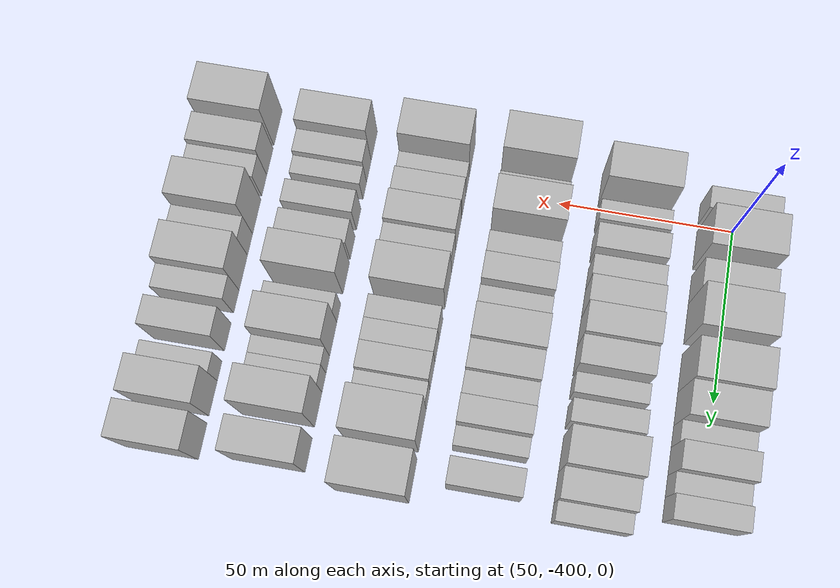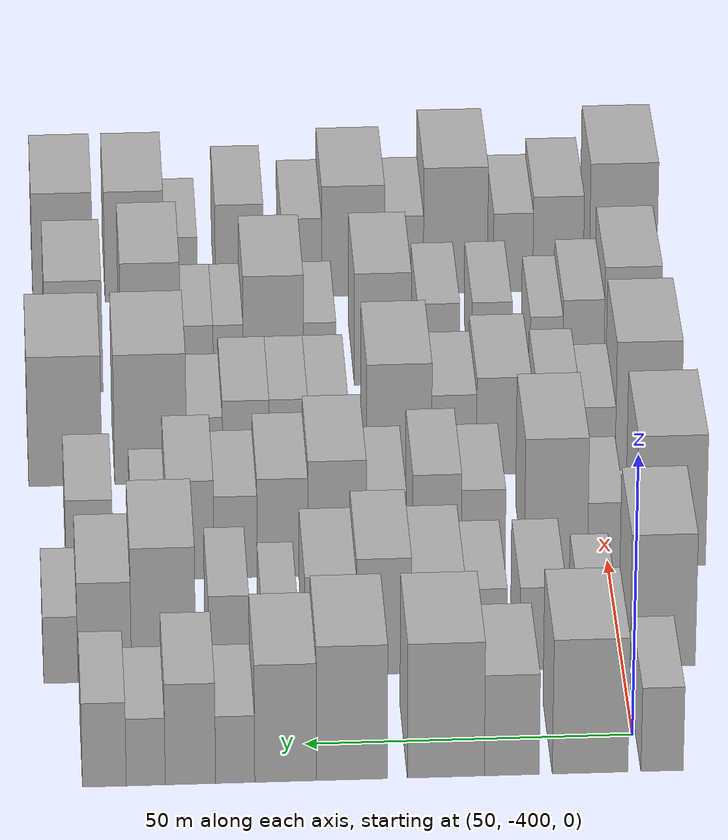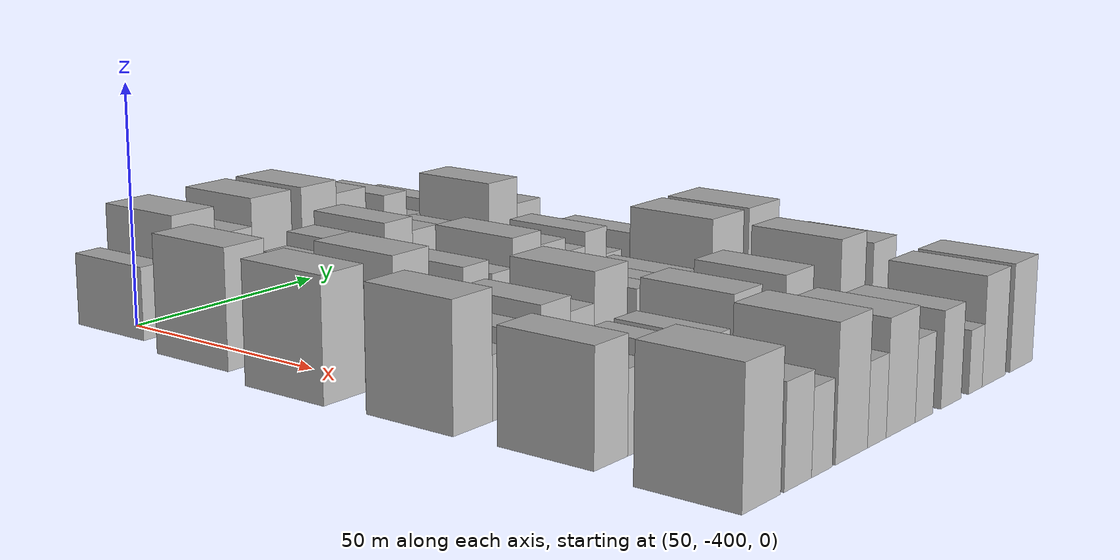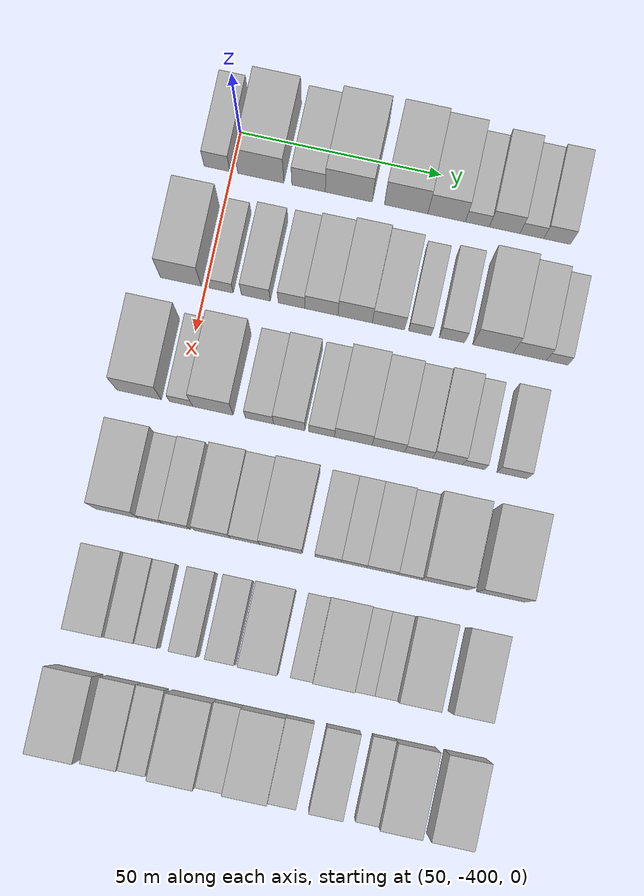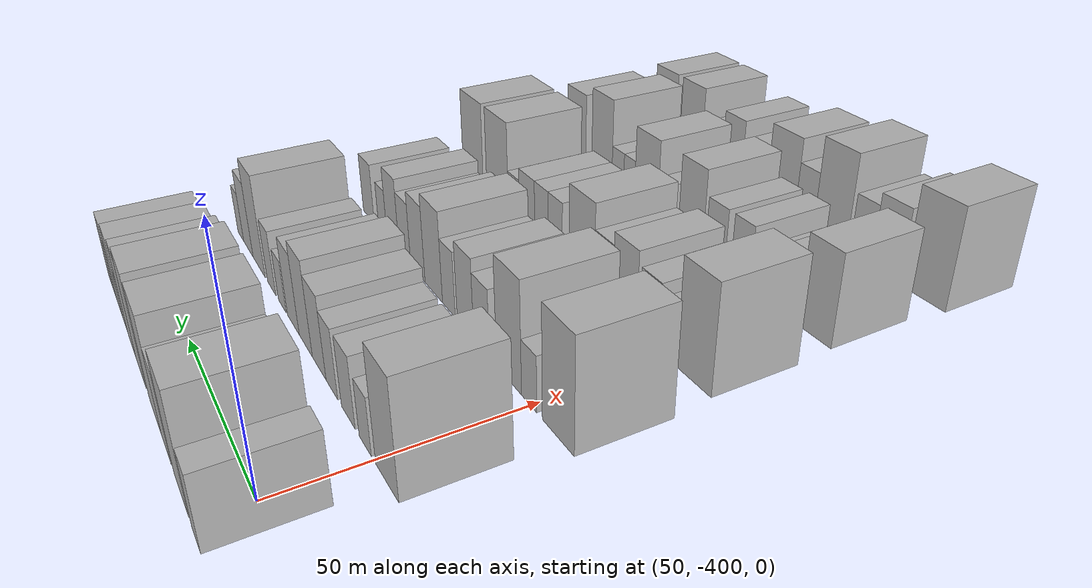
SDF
<sdf version="1.6">
 <world name="default">
  <model name="building_14">
   <static>1</static>
   <pose>50.0000 -403.6088 0 0.000000 0.000000 0.000000</pose>
   <link name="link">
    <pose>0 0 7.50 0 0 0</pose>
    <collision name="collision"><geometry><box><size>20.0000 6.3948 15.0000</size></box></geometry></collision>
    <visual name="visual">
     <cast_shadows>0</cast_shadows>
     <geometry><box><size>20.0000 6.3948 15.0000</size></box></geometry>
     <material>
      <script>
       <uri>model://HANNAS_wall/materials/scripts</uri>
       <uri>model://HANNAS_wall/materials/textures</uri>
       <name>vrc/HANNAS_wall</name>
      </script>
     </material>
    </visual>
   </link>
  </model>
  <model name="building_15">
   <static>1</static>
   <pose>50.0000 -392.6902 0 0.000000 0.000000 0.000000</pose>
   <link name="link">
    <pose>0 0 12.00 0 0 0</pose>
    <collision name="collision"><geometry><box><size>20.0000 11.4423 24.0000</size></box></geometry></collision>
    <visual name="visual">
     <cast_shadows>0</cast_shadows>
     <geometry><box><size>20.0000 11.4423 24.0000</size></box></geometry>
     <material>
      <script>
       <uri>model://HANNAS_wall/materials/scripts</uri>
       <uri>model://HANNAS_wall/materials/textures</uri>
       <name>vrc/HANNAS_wall</name>
      </script>
     </material>
    </visual>
   </link>
  </model>
  <model name="building_16">
   <static>1</static>
   <pose>50.0000 -380.8198 0 0.000000 0.000000 0.000000</pose>
   <link name="link">
    <pose>0 0 9.00 0 0 0</pose>
    <collision name="collision"><geometry><box><size>20.0000 8.2984 18.0000</size></box></geometry></collision>
    <visual name="visual">
     <cast_shadows>0</cast_shadows>
     <geometry><box><size>20.0000 8.2984 18.0000</size></box></geometry>
     <material>
      <script>
       <uri>model://HANNAS_wall/materials/scripts</uri>
       <uri>model://HANNAS_wall/materials/textures</uri>
       <name>vrc/HANNAS_wall</name>
      </script>
     </material>
    </visual>
   </link>
  </model>
  <model name="building_17">
   <static>1</static>
   <pose>50.0000 -370.8444 0 0.000000 0.000000 0.000000</pose>
   <link name="link">
    <pose>0 0 12.00 0 0 0</pose>
    <collision name="collision"><geometry><box><size>20.0000 11.6525 24.0000</size></box></geometry></collision>
    <visual name="visual">
     <cast_shadows>0</cast_shadows>
     <geometry><box><size>20.0000 11.6525 24.0000</size></box></geometry>
     <material>
      <script>
       <uri>model://HANNAS_wall/materials/scripts</uri>
       <uri>model://HANNAS_wall/materials/textures</uri>
       <name>vrc/HANNAS_wall</name>
      </script>
     </material>
    </visual>
   </link>
  </model>
  <model name="building_18">
   <static>1</static>
   <pose>50.0000 -356.6442 0 0.000000 0.000000 0.000000</pose>
   <link name="link">
    <pose>0 0 12.00 0 0 0</pose>
    <collision name="collision"><geometry><box><size>20.0000 10.7479 24.0000</size></box></geometry></collision>
    <visual name="visual">
     <cast_shadows>0</cast_shadows>
     <geometry><box><size>20.0000 10.7479 24.0000</size></box></geometry>
     <material>
      <script>
       <uri>model://HANNAS_wall/materials/scripts</uri>
       <uri>model://HANNAS_wall/materials/textures</uri>
       <name>vrc/HANNAS_wall</name>
      </script>
     </material>
    </visual>
   </link>
  </model>
  <model name="building_19">
   <static>1</static>
   <pose>50.0000 -346.6157 0 0.000000 0.000000 0.000000</pose>
   <link name="link">
    <pose>0 0 10.50 0 0 0</pose>
    <collision name="collision"><geometry><box><size>20.0000 9.3091 21.0000</size></box></geometry></collision>
    <visual name="visual">
     <cast_shadows>0</cast_shadows>
     <geometry><box><size>20.0000 9.3091 21.0000</size></box></geometry>
     <material>
      <script>
       <uri>model://HANNAS_wall/materials/scripts</uri>
       <uri>model://HANNAS_wall/materials/textures</uri>
       <name>vrc/HANNAS_wall</name>
      </script>
     </material>
    </visual>
   </link>
  </model>
  <model name="building_20">
   <static>1</static>
   <pose>50.0000 -338.9996 0 0.000000 0.000000 0.000000</pose>
   <link name="link">
    <pose>0 0 6.00 0 0 0</pose>
    <collision name="collision"><geometry><box><size>20.0000 5.9230 12.0000</size></box></geometry></collision>
    <visual name="visual">
     <cast_shadows>0</cast_shadows>
     <geometry><box><size>20.0000 5.9230 12.0000</size></box></geometry>
     <material>
      <script>
       <uri>model://HANNAS_wall/materials/scripts</uri>
       <uri>model://HANNAS_wall/materials/textures</uri>
       <name>vrc/HANNAS_wall</name>
      </script>
     </material>
    </visual>
   </link>
  </model>
  <model name="building_21">
   <static>1</static>
   <pose>50.0000 -332.2379 0 0.000000 0.000000 0.000000</pose>
   <link name="link">
    <pose>0 0 9.00 0 0 0</pose>
    <collision name="collision"><geometry><box><size>20.0000 7.6003 18.0000</size></box></geometry></collision>
    <visual name="visual">
     <cast_shadows>0</cast_shadows>
     <geometry><box><size>20.0000 7.6003 18.0000</size></box></geometry>
     <material>
      <script>
       <uri>model://HANNAS_wall/materials/scripts</uri>
       <uri>model://HANNAS_wall/materials/textures</uri>
       <name>vrc/HANNAS_wall</name>
      </script>
     </material>
    </visual>
   </link>
  </model>
  <model name="building_22">
   <static>1</static>
   <pose>50.0000 -325.4963 0 0.000000 0.000000 0.000000</pose>
   <link name="link">
    <pose>0 0 6.00 0 0 0</pose>
    <collision name="collision"><geometry><box><size>20.0000 5.8830 12.0000</size></box></geometry></collision>
    <visual name="visual">
     <cast_shadows>0</cast_shadows>
     <geometry><box><size>20.0000 5.8830 12.0000</size></box></geometry>
     <material>
      <script>
       <uri>model://HANNAS_wall/materials/scripts</uri>
       <uri>model://HANNAS_wall/materials/textures</uri>
       <name>vrc/HANNAS_wall</name>
      </script>
     </material>
    </visual>
   </link>
  </model>
  <model name="building_23">
   <static>1</static>
   <pose>50.0000 -319.2503 0 0.000000 0.000000 0.000000</pose>
   <link name="link">
    <pose>0 0 7.50 0 0 0</pose>
    <collision name="collision"><geometry><box><size>20.0000 6.6090 15.0000</size></box></geometry></collision>
    <visual name="visual">
     <cast_shadows>0</cast_shadows>
     <geometry><box><size>20.0000 6.6090 15.0000</size></box></geometry>
     <material>
      <script>
       <uri>model://HANNAS_wall/materials/scripts</uri>
       <uri>model://HANNAS_wall/materials/textures</uri>
       <name>vrc/HANNAS_wall</name>
      </script>
     </material>
    </visual>
   </link>
  </model>
  <model name="building_131">
   <static>1</static>
   <pose>79.0000 -406.0772 0 0.000000 0.000000 0.000000</pose>
   <link name="link">
    <pose>0 0 12.00 0 0 0</pose>
    <collision name="collision"><geometry><box><size>20.0000 10.1557 24.0000</size></box></geometry></collision>
    <visual name="visual">
     <cast_shadows>0</cast_shadows>
     <geometry><box><size>20.0000 10.1557 24.0000</size></box></geometry>
     <material>
      <script>
       <uri>model://HANNAS_wall/materials/scripts</uri>
       <uri>model://HANNAS_wall/materials/textures</uri>
       <name>vrc/HANNAS_wall</name>
      </script>
     </material>
    </visual>
   </link>
  </model>
  <model name="building_132">
   <static>1</static>
   <pose>79.0000 -396.0555 0 0.000000 0.000000 0.000000</pose>
   <link name="link">
    <pose>0 0 6.00 0 0 0</pose>
    <collision name="collision"><geometry><box><size>20.0000 5.8878 12.0000</size></box></geometry></collision>
    <visual name="visual">
     <cast_shadows>0</cast_shadows>
     <geometry><box><size>20.0000 5.8878 12.0000</size></box></geometry>
     <material>
      <script>
       <uri>model://HANNAS_wall/materials/scripts</uri>
       <uri>model://HANNAS_wall/materials/textures</uri>
       <name>vrc/HANNAS_wall</name>
      </script>
     </material>
    </visual>
   </link>
  </model>
  <model name="building_133">
   <static>1</static>
   <pose>79.0000 -387.5447 0 0.000000 0.000000 0.000000</pose>
   <link name="link">
    <pose>0 0 7.50 0 0 0</pose>
    <collision name="collision"><geometry><box><size>20.0000 7.1338 15.0000</size></box></geometry></collision>
    <visual name="visual">
     <cast_shadows>0</cast_shadows>
     <geometry><box><size>20.0000 7.1338 15.0000</size></box></geometry>
     <material>
      <script>
       <uri>model://HANNAS_wall/materials/scripts</uri>
       <uri>model://HANNAS_wall/materials/textures</uri>
       <name>vrc/HANNAS_wall</name>
      </script>
     </material>
    </visual>
   </link>
  </model>
  <model name="building_134">
   <static>1</static>
   <pose>79.0000 -378.6924 0 0.000000 0.000000 0.000000</pose>
   <link name="link">
    <pose>0 0 7.50 0 0 0</pose>
    <collision name="collision"><geometry><box><size>20.0000 6.5709 15.0000</size></box></geometry></collision>
    <visual name="visual">
     <cast_shadows>0</cast_shadows>
     <geometry><box><size>20.0000 6.5709 15.0000</size></box></geometry>
     <material>
      <script>
       <uri>model://HANNAS_wall/materials/scripts</uri>
       <uri>model://HANNAS_wall/materials/textures</uri>
       <name>vrc/HANNAS_wall</name>
      </script>
     </material>
    </visual>
   </link>
  </model>
  <model name="building_135">
   <static>1</static>
   <pose>79.0000 -371.3290 0 0.000000 0.000000 0.000000</pose>
   <link name="link">
    <pose>0 0 9.00 0 0 0</pose>
    <collision name="collision"><geometry><box><size>20.0000 8.1558 18.0000</size></box></geometry></collision>
    <visual name="visual">
     <cast_shadows>0</cast_shadows>
     <geometry><box><size>20.0000 8.1558 18.0000</size></box></geometry>
     <material>
      <script>
       <uri>model://HANNAS_wall/materials/scripts</uri>
       <uri>model://HANNAS_wall/materials/textures</uri>
       <name>vrc/HANNAS_wall</name>
      </script>
     </material>
    </visual>
   </link>
  </model>
  <model name="building_136">
   <static>1</static>
   <pose>79.0000 -363.0240 0 0.000000 0.000000 0.000000</pose>
   <link name="link">
    <pose>0 0 10.50 0 0 0</pose>
    <collision name="collision"><geometry><box><size>20.0000 8.4543 21.0000</size></box></geometry></collision>
    <visual name="visual">
     <cast_shadows>0</cast_shadows>
     <geometry><box><size>20.0000 8.4543 21.0000</size></box></geometry>
     <material>
      <script>
       <uri>model://HANNAS_wall/materials/scripts</uri>
       <uri>model://HANNAS_wall/materials/textures</uri>
       <name>vrc/HANNAS_wall</name>
      </script>
     </material>
    </visual>
   </link>
  </model>
  <model name="building_137">
   <static>1</static>
   <pose>79.0000 -354.8256 0 0.000000 0.000000 0.000000</pose>
   <link name="link">
    <pose>0 0 9.00 0 0 0</pose>
    <collision name="collision"><geometry><box><size>20.0000 7.9425 18.0000</size></box></geometry></collision>
    <visual name="visual">
     <cast_shadows>0</cast_shadows>
     <geometry><box><size>20.0000 7.9425 18.0000</size></box></geometry>
     <material>
      <script>
       <uri>model://HANNAS_wall/materials/scripts</uri>
       <uri>model://HANNAS_wall/materials/textures</uri>
       <name>vrc/HANNAS_wall</name>
      </script>
     </material>
    </visual>
   </link>
  </model>
  <model name="building_138">
   <static>1</static>
   <pose>79.0000 -347.0695 0 0.000000 0.000000 0.000000</pose>
   <link name="link">
    <pose>0 0 6.00 0 0 0</pose>
    <collision name="collision"><geometry><box><size>20.0000 5.5696 12.0000</size></box></geometry></collision>
    <visual name="visual">
     <cast_shadows>0</cast_shadows>
     <geometry><box><size>20.0000 5.5696 12.0000</size></box></geometry>
     <material>
      <script>
       <uri>model://HANNAS_wall/materials/scripts</uri>
       <uri>model://HANNAS_wall/materials/textures</uri>
       <name>vrc/HANNAS_wall</name>
      </script>
     </material>
    </visual>
   </link>
  </model>
  <model name="building_139">
   <static>1</static>
   <pose>79.0000 -339.1572 0 0.000000 0.000000 0.000000</pose>
   <link name="link">
    <pose>0 0 7.50 0 0 0</pose>
    <collision name="collision"><geometry><box><size>20.0000 6.2550 15.0000</size></box></geometry></collision>
    <visual name="visual">
     <cast_shadows>0</cast_shadows>
     <geometry><box><size>20.0000 6.2550 15.0000</size></box></geometry>
     <material>
      <script>
       <uri>model://HANNAS_wall/materials/scripts</uri>
       <uri>model://HANNAS_wall/materials/textures</uri>
       <name>vrc/HANNAS_wall</name>
      </script>
     </material>
    </visual>
   </link>
  </model>
  <model name="building_140">
   <static>1</static>
   <pose>79.0000 -329.0818 0 0.000000 0.000000 0.000000</pose>
   <link name="link">
    <pose>0 0 12.00 0 0 0</pose>
    <collision name="collision"><geometry><box><size>20.0000 9.8959 24.0000</size></box></geometry></collision>
    <visual name="visual">
     <cast_shadows>0</cast_shadows>
     <geometry><box><size>20.0000 9.8959 24.0000</size></box></geometry>
     <material>
      <script>
       <uri>model://HANNAS_wall/materials/scripts</uri>
       <uri>model://HANNAS_wall/materials/textures</uri>
       <name>vrc/HANNAS_wall</name>
      </script>
     </material>
    </visual>
   </link>
  </model>
  <model name="building_141">
   <static>1</static>
   <pose>79.0000 -320.0129 0 0.000000 0.000000 0.000000</pose>
   <link name="link">
    <pose>0 0 9.00 0 0 0</pose>
    <collision name="collision"><geometry><box><size>20.0000 8.2419 18.0000</size></box></geometry></collision>
    <visual name="visual">
     <cast_shadows>0</cast_shadows>
     <geometry><box><size>20.0000 8.2419 18.0000</size></box></geometry>
     <material>
      <script>
       <uri>model://HANNAS_wall/materials/scripts</uri>
       <uri>model://HANNAS_wall/materials/textures</uri>
       <name>vrc/HANNAS_wall</name>
      </script>
     </material>
    </visual>
   </link>
  </model>
  <model name="building_142">
   <static>1</static>
   <pose>79.0000 -313.2557 0 0.000000 0.000000 0.000000</pose>
   <link name="link">
    <pose>0 0 6.00 0 0 0</pose>
    <collision name="collision"><geometry><box><size>20.0000 5.2726 12.0000</size></box></geometry></collision>
    <visual name="visual">
     <cast_shadows>0</cast_shadows>
     <geometry><box><size>20.0000 5.2726 12.0000</size></box></geometry>
     <material>
      <script>
       <uri>model://HANNAS_wall/materials/scripts</uri>
       <uri>model://HANNAS_wall/materials/textures</uri>
       <name>vrc/HANNAS_wall</name>
      </script>
     </material>
    </visual>
   </link>
  </model>
  <model name="building_247">
   <static>1</static>
   <pose>108.0000 -409.8391 0 0.000000 0.000000 0.000000</pose>
   <link name="link">
    <pose>0 0 12.00 0 0 0</pose>
    <collision name="collision"><geometry><box><size>20.0000 10.9252 24.0000</size></box></geometry></collision>
    <visual name="visual">
     <cast_shadows>0</cast_shadows>
     <geometry><box><size>20.0000 10.9252 24.0000</size></box></geometry>
     <material>
      <script>
       <uri>model://HANNAS_wall/materials/scripts</uri>
       <uri>model://HANNAS_wall/materials/textures</uri>
       <name>vrc/HANNAS_wall</name>
      </script>
     </material>
    </visual>
   </link>
  </model>
  <model name="building_248">
   <static>1</static>
   <pose>108.0000 -399.5197 0 0.000000 0.000000 0.000000</pose>
   <link name="link">
    <pose>0 0 6.00 0 0 0</pose>
    <collision name="collision"><geometry><box><size>20.0000 5.7135 12.0000</size></box></geometry></collision>
    <visual name="visual">
     <cast_shadows>0</cast_shadows>
     <geometry><box><size>20.0000 5.7135 12.0000</size></box></geometry>
     <material>
      <script>
       <uri>model://HANNAS_wall/materials/scripts</uri>
       <uri>model://HANNAS_wall/materials/textures</uri>
       <name>vrc/HANNAS_wall</name>
      </script>
     </material>
    </visual>
   </link>
  </model>
  <model name="building_249">
   <static>1</static>
   <pose>108.0000 -391.6768 0 0.000000 0.000000 0.000000</pose>
   <link name="link">
    <pose>0 0 12.00 0 0 0</pose>
    <collision name="collision"><geometry><box><size>20.0000 9.9724 24.0000</size></box></geometry></collision>
    <visual name="visual">
     <cast_shadows>0</cast_shadows>
     <geometry><box><size>20.0000 9.9724 24.0000</size></box></geometry>
     <material>
      <script>
       <uri>model://HANNAS_wall/materials/scripts</uri>
       <uri>model://HANNAS_wall/materials/textures</uri>
       <name>vrc/HANNAS_wall</name>
      </script>
     </material>
    </visual>
   </link>
  </model>
  <model name="building_250">
   <static>1</static>
   <pose>108.0000 -380.2338 0 0.000000 0.000000 0.000000</pose>
   <link name="link">
    <pose>0 0 7.50 0 0 0</pose>
    <collision name="collision"><geometry><box><size>20.0000 6.9134 15.0000</size></box></geometry></collision>
    <visual name="visual">
     <cast_shadows>0</cast_shadows>
     <geometry><box><size>20.0000 6.9134 15.0000</size></box></geometry>
     <material>
      <script>
       <uri>model://HANNAS_wall/materials/scripts</uri>
       <uri>model://HANNAS_wall/materials/textures</uri>
       <name>vrc/HANNAS_wall</name>
      </script>
     </material>
    </visual>
   </link>
  </model>
  <model name="building_251">
   <static>1</static>
   <pose>108.0000 -372.9438 0 0.000000 0.000000 0.000000</pose>
   <link name="link">
    <pose>0 0 9.00 0 0 0</pose>
    <collision name="collision"><geometry><box><size>20.0000 7.6667 18.0000</size></box></geometry></collision>
    <visual name="visual">
     <cast_shadows>0</cast_shadows>
     <geometry><box><size>20.0000 7.6667 18.0000</size></box></geometry>
     <material>
      <script>
       <uri>model://HANNAS_wall/materials/scripts</uri>
       <uri>model://HANNAS_wall/materials/textures</uri>
       <name>vrc/HANNAS_wall</name>
      </script>
     </material>
    </visual>
   </link>
  </model>
  <model name="building_252">
   <static>1</static>
   <pose>108.0000 -364.9559 0 0.000000 0.000000 0.000000</pose>
   <link name="link">
    <pose>0 0 7.50 0 0 0</pose>
    <collision name="collision"><geometry><box><size>20.0000 6.3091 15.0000</size></box></geometry></collision>
    <visual name="visual">
     <cast_shadows>0</cast_shadows>
     <geometry><box><size>20.0000 6.3091 15.0000</size></box></geometry>
     <material>
      <script>
       <uri>model://HANNAS_wall/materials/scripts</uri>
       <uri>model://HANNAS_wall/materials/textures</uri>
       <name>vrc/HANNAS_wall</name>
      </script>
     </material>
    </visual>
   </link>
  </model>
  <model name="building_253">
   <static>1</static>
   <pose>108.0000 -357.2243 0 0.000000 0.000000 0.000000</pose>
   <link name="link">
    <pose>0 0 10.50 0 0 0</pose>
    <collision name="collision"><geometry><box><size>20.0000 9.1541 21.0000</size></box></geometry></collision>
    <visual name="visual">
     <cast_shadows>0</cast_shadows>
     <geometry><box><size>20.0000 9.1541 21.0000</size></box></geometry>
     <material>
      <script>
       <uri>model://HANNAS_wall/materials/scripts</uri>
       <uri>model://HANNAS_wall/materials/textures</uri>
       <name>vrc/HANNAS_wall</name>
      </script>
     </material>
    </visual>
   </link>
  </model>
  <model name="building_254">
   <static>1</static>
   <pose>108.0000 -348.6583 0 0.000000 0.000000 0.000000</pose>
   <link name="link">
    <pose>0 0 9.00 0 0 0</pose>
    <collision name="collision"><geometry><box><size>20.0000 7.9779 18.0000</size></box></geometry></collision>
    <visual name="visual">
     <cast_shadows>0</cast_shadows>
     <geometry><box><size>20.0000 7.9779 18.0000</size></box></geometry>
     <material>
      <script>
       <uri>model://HANNAS_wall/materials/scripts</uri>
       <uri>model://HANNAS_wall/materials/textures</uri>
       <name>vrc/HANNAS_wall</name>
      </script>
     </material>
    </visual>
   </link>
  </model>
  <model name="building_255">
   <static>1</static>
   <pose>108.0000 -341.2759 0 0.000000 0.000000 0.000000</pose>
   <link name="link">
    <pose>0 0 7.50 0 0 0</pose>
    <collision name="collision"><geometry><box><size>20.0000 6.7870 15.0000</size></box></geometry></collision>
    <visual name="visual">
     <cast_shadows>0</cast_shadows>
     <geometry><box><size>20.0000 6.7870 15.0000</size></box></geometry>
     <material>
      <script>
       <uri>model://HANNAS_wall/materials/scripts</uri>
       <uri>model://HANNAS_wall/materials/textures</uri>
       <name>vrc/HANNAS_wall</name>
      </script>
     </material>
    </visual>
   </link>
  </model>
  <model name="building_256">
   <static>1</static>
   <pose>108.0000 -334.1469 0 0.000000 0.000000 0.000000</pose>
   <link name="link">
    <pose>0 0 9.00 0 0 0</pose>
    <collision name="collision"><geometry><box><size>20.0000 7.4709 18.0000</size></box></geometry></collision>
    <visual name="visual">
     <cast_shadows>0</cast_shadows>
     <geometry><box><size>20.0000 7.4709 18.0000</size></box></geometry>
     <material>
      <script>
       <uri>model://HANNAS_wall/materials/scripts</uri>
       <uri>model://HANNAS_wall/materials/textures</uri>
       <name>vrc/HANNAS_wall</name>
      </script>
     </material>
    </visual>
   </link>
  </model>
  <model name="building_257">
   <static>1</static>
   <pose>108.0000 -327.7207 0 0.000000 0.000000 0.000000</pose>
   <link name="link">
    <pose>0 0 6.00 0 0 0</pose>
    <collision name="collision"><geometry><box><size>20.0000 5.3815 12.0000</size></box></geometry></collision>
    <visual name="visual">
     <cast_shadows>0</cast_shadows>
     <geometry><box><size>20.0000 5.3815 12.0000</size></box></geometry>
     <material>
      <script>
       <uri>model://HANNAS_wall/materials/scripts</uri>
       <uri>model://HANNAS_wall/materials/textures</uri>
       <name>vrc/HANNAS_wall</name>
      </script>
     </material>
    </visual>
   </link>
  </model>
  <model name="building_258">
   <static>1</static>
   <pose>108.0000 -318.3480 0 0.000000 0.000000 0.000000</pose>
   <link name="link">
    <pose>0 0 7.50 0 0 0</pose>
    <collision name="collision"><geometry><box><size>20.0000 7.3638 15.0000</size></box></geometry></collision>
    <visual name="visual">
     <cast_shadows>0</cast_shadows>
     <geometry><box><size>20.0000 7.3638 15.0000</size></box></geometry>
     <material>
      <script>
       <uri>model://HANNAS_wall/materials/scripts</uri>
       <uri>model://HANNAS_wall/materials/textures</uri>
       <name>vrc/HANNAS_wall</name>
      </script>
     </material>
    </visual>
   </link>
  </model>
  <model name="building_365">
   <static>1</static>
   <pose>137.0000 -408.5742 0 0.000000 0.000000 0.000000</pose>
   <link name="link">
    <pose>0 0 12.00 0 0 0</pose>
    <collision name="collision"><geometry><box><size>20.0000 10.5537 24.0000</size></box></geometry></collision>
    <visual name="visual">
     <cast_shadows>0</cast_shadows>
     <geometry><box><size>20.0000 10.5537 24.0000</size></box></geometry>
     <material>
      <script>
       <uri>model://HANNAS_wall/materials/scripts</uri>
       <uri>model://HANNAS_wall/materials/textures</uri>
       <name>vrc/HANNAS_wall</name>
      </script>
     </material>
    </visual>
   </link>
  </model>
  <model name="building_366">
   <static>1</static>
   <pose>137.0000 -400.4057 0 0.000000 0.000000 0.000000</pose>
   <link name="link">
    <pose>0 0 6.00 0 0 0</pose>
    <collision name="collision"><geometry><box><size>20.0000 5.7832 12.0000</size></box></geometry></collision>
    <visual name="visual">
     <cast_shadows>0</cast_shadows>
     <geometry><box><size>20.0000 5.7832 12.0000</size></box></geometry>
     <material>
      <script>
       <uri>model://HANNAS_wall/materials/scripts</uri>
       <uri>model://HANNAS_wall/materials/textures</uri>
       <name>vrc/HANNAS_wall</name>
      </script>
     </material>
    </visual>
   </link>
  </model>
  <model name="building_367">
   <static>1</static>
   <pose>137.0000 -394.1179 0 0.000000 0.000000 0.000000</pose>
   <link name="link">
    <pose>0 0 7.50 0 0 0</pose>
    <collision name="collision"><geometry><box><size>20.0000 6.7924 15.0000</size></box></geometry></collision>
    <visual name="visual">
     <cast_shadows>0</cast_shadows>
     <geometry><box><size>20.0000 6.7924 15.0000</size></box></geometry>
     <material>
      <script>
       <uri>model://HANNAS_wall/materials/scripts</uri>
       <uri>model://HANNAS_wall/materials/textures</uri>
       <name>vrc/HANNAS_wall</name>
      </script>
     </material>
    </visual>
   </link>
  </model>
  <model name="building_368">
   <static>1</static>
   <pose>137.0000 -385.3560 0 0.000000 0.000000 0.000000</pose>
   <link name="link">
    <pose>0 0 9.00 0 0 0</pose>
    <collision name="collision"><geometry><box><size>20.0000 8.7315 18.0000</size></box></geometry></collision>
    <visual name="visual">
     <cast_shadows>0</cast_shadows>
     <geometry><box><size>20.0000 8.7315 18.0000</size></box></geometry>
     <material>
      <script>
       <uri>model://HANNAS_wall/materials/scripts</uri>
       <uri>model://HANNAS_wall/materials/textures</uri>
       <name>vrc/HANNAS_wall</name>
      </script>
     </material>
    </visual>
   </link>
  </model>
  <model name="building_369">
   <static>1</static>
   <pose>137.0000 -377.3966 0 0.000000 0.000000 0.000000</pose>
   <link name="link">
    <pose>0 0 7.50 0 0 0</pose>
    <collision name="collision"><geometry><box><size>20.0000 7.1872 15.0000</size></box></geometry></collision>
    <visual name="visual">
     <cast_shadows>0</cast_shadows>
     <geometry><box><size>20.0000 7.1872 15.0000</size></box></geometry>
     <material>
      <script>
       <uri>model://HANNAS_wall/materials/scripts</uri>
       <uri>model://HANNAS_wall/materials/textures</uri>
       <name>vrc/HANNAS_wall</name>
      </script>
     </material>
    </visual>
   </link>
  </model>
  <model name="building_370">
   <static>1</static>
   <pose>137.0000 -368.5956 0 0.000000 0.000000 0.000000</pose>
   <link name="link">
    <pose>0 0 10.50 0 0 0</pose>
    <collision name="collision"><geometry><box><size>20.0000 10.4150 21.0000</size></box></geometry></collision>
    <visual name="visual">
     <cast_shadows>0</cast_shadows>
     <geometry><box><size>20.0000 10.4150 21.0000</size></box></geometry>
     <material>
      <script>
       <uri>model://HANNAS_wall/materials/scripts</uri>
       <uri>model://HANNAS_wall/materials/textures</uri>
       <name>vrc/HANNAS_wall</name>
      </script>
     </material>
    </visual>
   </link>
  </model>
  <model name="building_371">
   <static>1</static>
   <pose>137.0000 -357.1713 0 0.000000 0.000000 0.000000</pose>
   <link name="link">
    <pose>0 0 7.50 0 0 0</pose>
    <collision name="collision"><geometry><box><size>20.0000 6.4335 15.0000</size></box></geometry></collision>
    <visual name="visual">
     <cast_shadows>0</cast_shadows>
     <geometry><box><size>20.0000 6.4335 15.0000</size></box></geometry>
     <material>
      <script>
       <uri>model://HANNAS_wall/materials/scripts</uri>
       <uri>model://HANNAS_wall/materials/textures</uri>
       <name>vrc/HANNAS_wall</name>
      </script>
     </material>
    </visual>
   </link>
  </model>
  <model name="building_372">
   <static>1</static>
   <pose>137.0000 -350.8728 0 0.000000 0.000000 0.000000</pose>
   <link name="link">
    <pose>0 0 7.50 0 0 0</pose>
    <collision name="collision"><geometry><box><size>20.0000 6.1636 15.0000</size></box></geometry></collision>
    <visual name="visual">
     <cast_shadows>0</cast_shadows>
     <geometry><box><size>20.0000 6.1636 15.0000</size></box></geometry>
     <material>
      <script>
       <uri>model://HANNAS_wall/materials/scripts</uri>
       <uri>model://HANNAS_wall/materials/textures</uri>
       <name>vrc/HANNAS_wall</name>
      </script>
     </material>
    </visual>
   </link>
  </model>
  <model name="building_373">
   <static>1</static>
   <pose>137.0000 -344.0412 0 0.000000 0.000000 0.000000</pose>
   <link name="link">
    <pose>0 0 7.50 0 0 0</pose>
    <collision name="collision"><geometry><box><size>20.0000 7.4994 15.0000</size></box></geometry></collision>
    <visual name="visual">
     <cast_shadows>0</cast_shadows>
     <geometry><box><size>20.0000 7.4994 15.0000</size></box></geometry>
     <material>
      <script>
       <uri>model://HANNAS_wall/materials/scripts</uri>
       <uri>model://HANNAS_wall/materials/textures</uri>
       <name>vrc/HANNAS_wall</name>
      </script>
     </material>
    </visual>
   </link>
  </model>
  <model name="building_374">
   <static>1</static>
   <pose>137.0000 -337.4104 0 0.000000 0.000000 0.000000</pose>
   <link name="link">
    <pose>0 0 6.00 0 0 0</pose>
    <collision name="collision"><geometry><box><size>20.0000 5.7622 12.0000</size></box></geometry></collision>
    <visual name="visual">
     <cast_shadows>0</cast_shadows>
     <geometry><box><size>20.0000 5.7622 12.0000</size></box></geometry>
     <material>
      <script>
       <uri>model://HANNAS_wall/materials/scripts</uri>
       <uri>model://HANNAS_wall/materials/textures</uri>
       <name>vrc/HANNAS_wall</name>
      </script>
     </material>
    </visual>
   </link>
  </model>
  <model name="building_375">
   <static>1</static>
   <pose>137.0000 -328.7541 0 0.000000 0.000000 0.000000</pose>
   <link name="link">
    <pose>0 0 12.00 0 0 0</pose>
    <collision name="collision"><geometry><box><size>20.0000 11.5505 24.0000</size></box></geometry></collision>
    <visual name="visual">
     <cast_shadows>0</cast_shadows>
     <geometry><box><size>20.0000 11.5505 24.0000</size></box></geometry>
     <material>
      <script>
       <uri>model://HANNAS_wall/materials/scripts</uri>
       <uri>model://HANNAS_wall/materials/textures</uri>
       <name>vrc/HANNAS_wall</name>
      </script>
     </material>
    </visual>
   </link>
  </model>
  <model name="building_376">
   <static>1</static>
   <pose>137.0000 -315.0941 0 0.000000 0.000000 0.000000</pose>
   <link name="link">
    <pose>0 0 12.00 0 0 0</pose>
    <collision name="collision"><geometry><box><size>20.0000 11.7695 24.0000</size></box></geometry></collision>
    <visual name="visual">
     <cast_shadows>0</cast_shadows>
     <geometry><box><size>20.0000 11.7695 24.0000</size></box></geometry>
     <material>
      <script>
       <uri>model://HANNAS_wall/materials/scripts</uri>
       <uri>model://HANNAS_wall/materials/textures</uri>
       <name>vrc/HANNAS_wall</name>
      </script>
     </material>
    </visual>
   </link>
  </model>
  <model name="building_474">
   <static>1</static>
   <pose>166.0000 -408.3612 0 0.000000 0.000000 0.000000</pose>
   <link name="link">
    <pose>0 0 10.50 0 0 0</pose>
    <collision name="collision"><geometry><box><size>20.0000 9.3088 21.0000</size></box></geometry></collision>
    <visual name="visual">
     <cast_shadows>0</cast_shadows>
     <geometry><box><size>20.0000 9.3088 21.0000</size></box></geometry>
     <material>
      <script>
       <uri>model://HANNAS_wall/materials/scripts</uri>
       <uri>model://HANNAS_wall/materials/textures</uri>
       <name>vrc/HANNAS_wall</name>
      </script>
     </material>
    </visual>
   </link>
  </model>
  <model name="building_475">
   <static>1</static>
   <pose>166.0000 -400.3292 0 0.000000 0.000000 0.000000</pose>
   <link name="link">
    <pose>0 0 7.50 0 0 0</pose>
    <collision name="collision"><geometry><box><size>20.0000 6.7550 15.0000</size></box></geometry></collision>
    <visual name="visual">
     <cast_shadows>0</cast_shadows>
     <geometry><box><size>20.0000 6.7550 15.0000</size></box></geometry>
     <material>
      <script>
       <uri>model://HANNAS_wall/materials/scripts</uri>
       <uri>model://HANNAS_wall/materials/textures</uri>
       <name>vrc/HANNAS_wall</name>
      </script>
     </material>
    </visual>
   </link>
  </model>
  <model name="building_476">
   <static>1</static>
   <pose>166.0000 -394.2780 0 0.000000 0.000000 0.000000</pose>
   <link name="link">
    <pose>0 0 6.00 0 0 0</pose>
    <collision name="collision"><geometry><box><size>20.0000 5.3475 12.0000</size></box></geometry></collision>
    <visual name="visual">
     <cast_shadows>0</cast_shadows>
     <geometry><box><size>20.0000 5.3475 12.0000</size></box></geometry>
     <material>
      <script>
       <uri>model://HANNAS_wall/materials/scripts</uri>
       <uri>model://HANNAS_wall/materials/textures</uri>
       <name>vrc/HANNAS_wall</name>
      </script>
     </material>
    </visual>
   </link>
  </model>
  <model name="building_477">
   <static>1</static>
   <pose>166.0000 -385.3408 0 0.000000 0.000000 0.000000</pose>
   <link name="link">
    <pose>0 0 7.50 0 0 0</pose>
    <collision name="collision"><geometry><box><size>20.0000 6.5269 15.0000</size></box></geometry></collision>
    <visual name="visual">
     <cast_shadows>0</cast_shadows>
     <geometry><box><size>20.0000 6.5269 15.0000</size></box></geometry>
     <material>
      <script>
       <uri>model://HANNAS_wall/materials/scripts</uri>
       <uri>model://HANNAS_wall/materials/textures</uri>
       <name>vrc/HANNAS_wall</name>
      </script>
     </material>
    </visual>
   </link>
  </model>
  <model name="building_478">
   <static>1</static>
   <pose>166.0000 -376.6183 0 0.000000 0.000000 0.000000</pose>
   <link name="link">
    <pose>0 0 7.50 0 0 0</pose>
    <collision name="collision"><geometry><box><size>20.0000 6.9181 15.0000</size></box></geometry></collision>
    <visual name="visual">
     <cast_shadows>0</cast_shadows>
     <geometry><box><size>20.0000 6.9181 15.0000</size></box></geometry>
     <material>
      <script>
       <uri>model://HANNAS_wall/materials/scripts</uri>
       <uri>model://HANNAS_wall/materials/textures</uri>
       <name>vrc/HANNAS_wall</name>
      </script>
     </material>
    </visual>
   </link>
  </model>
  <model name="building_479">
   <static>1</static>
   <pose>166.0000 -367.5160 0 0.000000 0.000000 0.000000</pose>
   <link name="link">
    <pose>0 0 10.50 0 0 0</pose>
    <collision name="collision"><geometry><box><size>20.0000 9.2864 21.0000</size></box></geometry></collision>
    <visual name="visual">
     <cast_shadows>0</cast_shadows>
     <geometry><box><size>20.0000 9.2864 21.0000</size></box></geometry>
     <material>
      <script>
       <uri>model://HANNAS_wall/materials/scripts</uri>
       <uri>model://HANNAS_wall/materials/textures</uri>
       <name>vrc/HANNAS_wall</name>
      </script>
     </material>
    </visual>
   </link>
  </model>
  <model name="building_480">
   <static>1</static>
   <pose>166.0000 -357.2113 0 0.000000 0.000000 0.000000</pose>
   <link name="link">
    <pose>0 0 6.00 0 0 0</pose>
    <collision name="collision"><geometry><box><size>20.0000 5.3231 12.0000</size></box></geometry></collision>
    <visual name="visual">
     <cast_shadows>0</cast_shadows>
     <geometry><box><size>20.0000 5.3231 12.0000</size></box></geometry>
     <material>
      <script>
       <uri>model://HANNAS_wall/materials/scripts</uri>
       <uri>model://HANNAS_wall/materials/textures</uri>
       <name>vrc/HANNAS_wall</name>
      </script>
     </material>
    </visual>
   </link>
  </model>
  <model name="building_481">
   <static>1</static>
   <pose>166.0000 -349.6382 0 0.000000 0.000000 0.000000</pose>
   <link name="link">
    <pose>0 0 10.50 0 0 0</pose>
    <collision name="collision"><geometry><box><size>20.0000 9.8230 21.0000</size></box></geometry></collision>
    <visual name="visual">
     <cast_shadows>0</cast_shadows>
     <geometry><box><size>20.0000 9.8230 21.0000</size></box></geometry>
     <material>
      <script>
       <uri>model://HANNAS_wall/materials/scripts</uri>
       <uri>model://HANNAS_wall/materials/textures</uri>
       <name>vrc/HANNAS_wall</name>
      </script>
     </material>
    </visual>
   </link>
  </model>
  <model name="building_482">
   <static>1</static>
   <pose>166.0000 -342.2788 0 0.000000 0.000000 0.000000</pose>
   <link name="link">
    <pose>0 0 6.00 0 0 0</pose>
    <collision name="collision"><geometry><box><size>20.0000 4.8957 12.0000</size></box></geometry></collision>
    <visual name="visual">
     <cast_shadows>0</cast_shadows>
     <geometry><box><size>20.0000 4.8957 12.0000</size></box></geometry>
     <material>
      <script>
       <uri>model://HANNAS_wall/materials/scripts</uri>
       <uri>model://HANNAS_wall/materials/textures</uri>
       <name>vrc/HANNAS_wall</name>
      </script>
     </material>
    </visual>
   </link>
  </model>
  <model name="building_483">
   <static>1</static>
   <pose>166.0000 -337.1550 0 0.000000 0.000000 0.000000</pose>
   <link name="link">
    <pose>0 0 6.00 0 0 0</pose>
    <collision name="collision"><geometry><box><size>20.0000 5.3519 12.0000</size></box></geometry></collision>
    <visual name="visual">
     <cast_shadows>0</cast_shadows>
     <geometry><box><size>20.0000 5.3519 12.0000</size></box></geometry>
     <material>
      <script>
       <uri>model://HANNAS_wall/materials/scripts</uri>
       <uri>model://HANNAS_wall/materials/textures</uri>
       <name>vrc/HANNAS_wall</name>
      </script>
     </material>
    </visual>
   </link>
  </model>
  <model name="building_484">
   <static>1</static>
   <pose>166.0000 -329.6318 0 0.000000 0.000000 0.000000</pose>
   <link name="link">
    <pose>0 0 12.00 0 0 0</pose>
    <collision name="collision"><geometry><box><size>20.0000 9.6945 24.0000</size></box></geometry></collision>
    <visual name="visual">
     <cast_shadows>0</cast_shadows>
     <geometry><box><size>20.0000 9.6945 24.0000</size></box></geometry>
     <material>
      <script>
       <uri>model://HANNAS_wall/materials/scripts</uri>
       <uri>model://HANNAS_wall/materials/textures</uri>
       <name>vrc/HANNAS_wall</name>
      </script>
     </material>
    </visual>
   </link>
  </model>
  <model name="building_485">
   <static>1</static>
   <pose>166.0000 -317.1141 0 0.000000 0.000000 0.000000</pose>
   <link name="link">
    <pose>0 0 10.50 0 0 0</pose>
    <collision name="collision"><geometry><box><size>20.0000 9.3409 21.0000</size></box></geometry></collision>
    <visual name="visual">
     <cast_shadows>0</cast_shadows>
     <geometry><box><size>20.0000 9.3409 21.0000</size></box></geometry>
     <material>
      <script>
       <uri>model://HANNAS_wall/materials/scripts</uri>
       <uri>model://HANNAS_wall/materials/textures</uri>
       <name>vrc/HANNAS_wall</name>
      </script>
     </material>
    </visual>
   </link>
  </model>
  <model name="building_595">
   <static>1</static>
   <pose>195.0000 -409.1289 0 0.000000 0.000000 0.000000</pose>
   <link name="link">
    <pose>0 0 12.00 0 0 0</pose>
    <collision name="collision"><geometry><box><size>20.0000 11.2526 24.0000</size></box></geometry></collision>
    <visual name="visual">
     <cast_shadows>0</cast_shadows>
     <geometry><box><size>20.0000 11.2526 24.0000</size></box></geometry>
     <material>
      <script>
       <uri>model://HANNAS_wall/materials/scripts</uri>
       <uri>model://HANNAS_wall/materials/textures</uri>
       <name>vrc/HANNAS_wall</name>
      </script>
     </material>
    </visual>
   </link>
  </model>
  <model name="building_596">
   <static>1</static>
   <pose>195.0000 -398.2924 0 0.000000 0.000000 0.000000</pose>
   <link name="link">
    <pose>0 0 9.00 0 0 0</pose>
    <collision name="collision"><geometry><box><size>20.0000 8.4204 18.0000</size></box></geometry></collision>
    <visual name="visual">
     <cast_shadows>0</cast_shadows>
     <geometry><box><size>20.0000 8.4204 18.0000</size></box></geometry>
     <material>
      <script>
       <uri>model://HANNAS_wall/materials/scripts</uri>
       <uri>model://HANNAS_wall/materials/textures</uri>
       <name>vrc/HANNAS_wall</name>
      </script>
     </material>
    </visual>
   </link>
  </model>
  <model name="building_597">
   <static>1</static>
   <pose>195.0000 -390.7969 0 0.000000 0.000000 0.000000</pose>
   <link name="link">
    <pose>0 0 7.50 0 0 0</pose>
    <collision name="collision"><geometry><box><size>20.0000 6.5705 15.0000</size></box></geometry></collision>
    <visual name="visual">
     <cast_shadows>0</cast_shadows>
     <geometry><box><size>20.0000 6.5705 15.0000</size></box></geometry>
     <material>
      <script>
       <uri>model://HANNAS_wall/materials/scripts</uri>
       <uri>model://HANNAS_wall/materials/textures</uri>
       <name>vrc/HANNAS_wall</name>
      </script>
     </material>
    </visual>
   </link>
  </model>
  <model name="building_598">
   <static>1</static>
   <pose>195.0000 -381.1700 0 0.000000 0.000000 0.000000</pose>
   <link name="link">
    <pose>0 0 12.00 0 0 0</pose>
    <collision name="collision"><geometry><box><size>20.0000 10.6833 24.0000</size></box></geometry></collision>
    <visual name="visual">
     <cast_shadows>0</cast_shadows>
     <geometry><box><size>20.0000 10.6833 24.0000</size></box></geometry>
     <material>
      <script>
       <uri>model://HANNAS_wall/materials/scripts</uri>
       <uri>model://HANNAS_wall/materials/textures</uri>
       <name>vrc/HANNAS_wall</name>
      </script>
     </material>
    </visual>
   </link>
  </model>
  <model name="building_599">
   <static>1</static>
   <pose>195.0000 -372.5845 0 0.000000 0.000000 0.000000</pose>
   <link name="link">
    <pose>0 0 7.50 0 0 0</pose>
    <collision name="collision"><geometry><box><size>20.0000 6.4878 15.0000</size></box></geometry></collision>
    <visual name="visual">
     <cast_shadows>0</cast_shadows>
     <geometry><box><size>20.0000 6.4878 15.0000</size></box></geometry>
     <material>
      <script>
       <uri>model://HANNAS_wall/materials/scripts</uri>
       <uri>model://HANNAS_wall/materials/textures</uri>
       <name>vrc/HANNAS_wall</name>
      </script>
     </material>
    </visual>
   </link>
  </model>
  <model name="building_600">
   <static>1</static>
   <pose>195.0000 -364.1031 0 0.000000 0.000000 0.000000</pose>
   <link name="link">
    <pose>0 0 10.50 0 0 0</pose>
    <collision name="collision"><geometry><box><size>20.0000 10.4748 21.0000</size></box></geometry></collision>
    <visual name="visual">
     <cast_shadows>0</cast_shadows>
     <geometry><box><size>20.0000 10.4748 21.0000</size></box></geometry>
     <material>
      <script>
       <uri>model://HANNAS_wall/materials/scripts</uri>
       <uri>model://HANNAS_wall/materials/textures</uri>
       <name>vrc/HANNAS_wall</name>
      </script>
     </material>
    </visual>
   </link>
  </model>
  <model name="building_601">
   <static>1</static>
   <pose>195.0000 -355.5343 0 0.000000 0.000000 0.000000</pose>
   <link name="link">
    <pose>0 0 7.50 0 0 0</pose>
    <collision name="collision"><geometry><box><size>20.0000 6.6629 15.0000</size></box></geometry></collision>
    <visual name="visual">
     <cast_shadows>0</cast_shadows>
     <geometry><box><size>20.0000 6.6629 15.0000</size></box></geometry>
     <material>
      <script>
       <uri>model://HANNAS_wall/materials/scripts</uri>
       <uri>model://HANNAS_wall/materials/textures</uri>
       <name>vrc/HANNAS_wall</name>
      </script>
     </material>
    </visual>
   </link>
  </model>
  <model name="building_602">
   <static>1</static>
   <pose>195.0000 -345.1971 0 0.000000 0.000000 0.000000</pose>
   <link name="link">
    <pose>0 0 9.00 0 0 0</pose>
    <collision name="collision"><geometry><box><size>20.0000 8.0115 18.0000</size></box></geometry></collision>
    <visual name="visual">
     <cast_shadows>0</cast_shadows>
     <geometry><box><size>20.0000 8.0115 18.0000</size></box></geometry>
     <material>
      <script>
       <uri>model://HANNAS_wall/materials/scripts</uri>
       <uri>model://HANNAS_wall/materials/textures</uri>
       <name>vrc/HANNAS_wall</name>
      </script>
     </material>
    </visual>
   </link>
  </model>
  <model name="building_603">
   <static>1</static>
   <pose>195.0000 -335.4193 0 0.000000 0.000000 0.000000</pose>
   <link name="link">
    <pose>0 0 6.00 0 0 0</pose>
    <collision name="collision"><geometry><box><size>20.0000 5.5441 12.0000</size></box></geometry></collision>
    <visual name="visual">
     <cast_shadows>0</cast_shadows>
     <geometry><box><size>20.0000 5.5441 12.0000</size></box></geometry>
     <material>
      <script>
       <uri>model://HANNAS_wall/materials/scripts</uri>
       <uri>model://HANNAS_wall/materials/textures</uri>
       <name>vrc/HANNAS_wall</name>
      </script>
     </material>
    </visual>
   </link>
  </model>
  <model name="building_604">
   <static>1</static>
   <pose>195.0000 -327.7342 0 0.000000 0.000000 0.000000</pose>
   <link name="link">
    <pose>0 0 10.50 0 0 0</pose>
    <collision name="collision"><geometry><box><size>20.0000 9.8261 21.0000</size></box></geometry></collision>
    <visual name="visual">
     <cast_shadows>0</cast_shadows>
     <geometry><box><size>20.0000 9.8261 21.0000</size></box></geometry>
     <material>
      <script>
       <uri>model://HANNAS_wall/materials/scripts</uri>
       <uri>model://HANNAS_wall/materials/textures</uri>
       <name>vrc/HANNAS_wall</name>
      </script>
     </material>
    </visual>
   </link>
  </model>
  <model name="building_605">
   <static>1</static>
   <pose>195.0000 -315.8140 0 0.000000 0.000000 0.000000</pose>
   <link name="link">
    <pose>0 0 10.50 0 0 0</pose>
    <collision name="collision"><geometry><box><size>20.0000 10.0144 21.0000</size></box></geometry></collision>
    <visual name="visual">
     <cast_shadows>0</cast_shadows>
     <geometry><box><size>20.0000 10.0144 21.0000</size></box></geometry>
     <material>
      <script>
       <uri>model://HANNAS_wall/materials/scripts</uri>
       <uri>model://HANNAS_wall/materials/textures</uri>
       <name>vrc/HANNAS_wall</name>
      </script>
     </material>
    </visual>
   </link>
  </model>
 </world>
</sdf>
